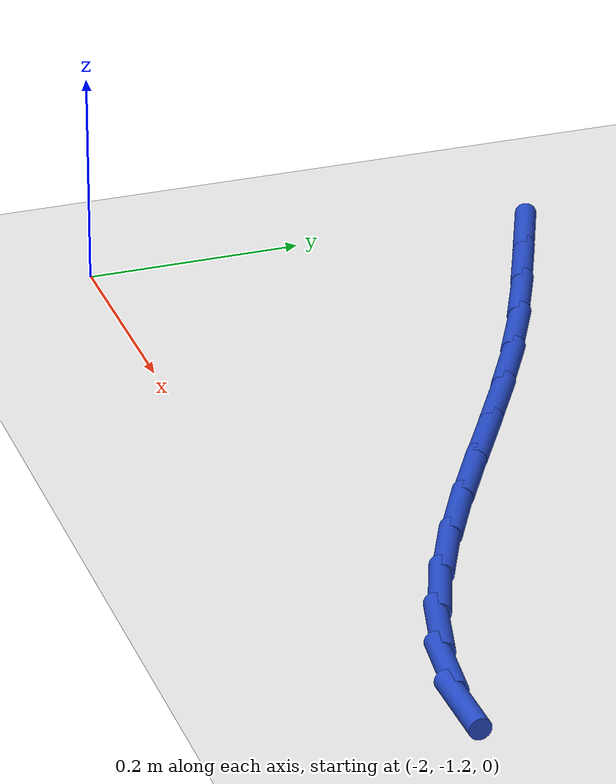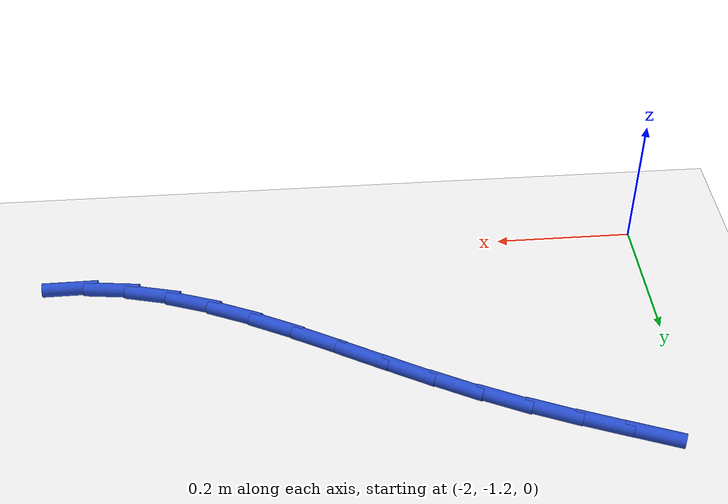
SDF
<sdf version="1.6">
 <world name="default">
  <model name="ground_plane">
   <static>1</static>
   <link name="link">
    <collision name="collision">
     <geometry><plane><normal>0 0 1</normal><size>100 100</size></plane></geometry>
     <surface><friction><ode><mu>100</mu><mu2>50</mu2></ode></friction></surface>
    </collision>
    <visual name="visual">
     <cast_shadows>0</cast_shadows>
     <geometry><plane><normal>0 0 1</normal><size>100 100</size></plane></geometry>
     <material>
      <script><uri>file://media/materials/scripts/gazebo.material</uri><name>Gazebo/WhiteGlow</name></script>
     </material>
    </visual>
   </link>
  </model>
  <model name="line">
   <link name="link_70">
    <pose>-1.941157476317382 -0.7943814646543852 0.01 0 1.57 -0.3812012821206444</pose>
    <collision name="collision">
     <geometry><cylinder><radius>0.01</radius><length>0.08</length></cylinder></geometry>
    </collision>
    <visual name="visual">
     <material>
      <script><name>Gazebo/Blue</name><uri>file://media/materials/scripts/gazebo.material</uri></script>
     </material>
     <geometry><cylinder><radius>0.01</radius><length>0.08</length></cylinder></geometry>
    </visual>
   </link>
   <link name="link_71">
    <pose>-1.8797072337007383 -0.8190111098959046 0.01 0 1.57 -0.3871343401791467</pose>
    <collision name="collision">
     <geometry><cylinder><radius>0.01</radius><length>0.08</length></cylinder></geometry>
    </collision>
    <visual name="visual">
     <material>
      <script><name>Gazebo/Blue</name><uri>file://media/materials/scripts/gazebo.material</uri></script>
     </material>
     <geometry><cylinder><radius>0.01</radius><length>0.08</length></cylinder></geometry>
    </visual>
   </link>
   <link name="link_72">
    <pose>-1.817806772867539 -0.844248484138812 0.01 0 1.57 -0.4122689746380021</pose>
    <collision name="collision">
     <geometry><cylinder><radius>0.01</radius><length>0.08</length></cylinder></geometry>
    </collision>
    <visual name="visual">
     <material>
      <script><name>Gazebo/Blue</name><uri>file://media/materials/scripts/gazebo.material</uri></script>
     </material>
     <geometry><cylinder><radius>0.01</radius><length>0.08</length></cylinder></geometry>
    </visual>
   </link>
   <link name="link_73">
    <pose>-1.7561014099807717 -0.871234180938431 0.01 0 1.57 -0.4551848548443463</pose>
    <collision name="collision">
     <geometry><cylinder><radius>0.01</radius><length>0.08</length></cylinder></geometry>
    </collision>
    <visual name="visual">
     <material>
      <script><name>Gazebo/Blue</name><uri>file://media/materials/scripts/gazebo.material</uri></script>
     </material>
     <geometry><cylinder><radius>0.01</radius><length>0.08</length></cylinder></geometry>
    </visual>
   </link>
   <link name="link_74">
    <pose>-1.6952113044715016 -0.9010378099941341 0.01 0 1.57 -0.49633005590154317</pose>
    <collision name="collision">
     <geometry><cylinder><radius>0.01</radius><length>0.08</length></cylinder></geometry>
    </collision>
    <visual name="visual">
     <material>
      <script><name>Gazebo/Blue</name><uri>file://media/materials/scripts/gazebo.material</uri></script>
     </material>
     <geometry><cylinder><radius>0.01</radius><length>0.08</length></cylinder></geometry>
    </visual>
   </link>
   <link name="link_75">
    <pose>-1.6353124938166512 -0.9334758178790203 0.01 0 1.57 -0.5196297295804968</pose>
    <collision name="collision">
     <geometry><cylinder><radius>0.01</radius><length>0.08</length></cylinder></geometry>
    </collision>
    <visual name="visual">
     <material>
      <script><name>Gazebo/Blue</name><uri>file://media/materials/scripts/gazebo.material</uri></script>
     </material>
     <geometry><cylinder><radius>0.01</radius><length>0.08</length></cylinder></geometry>
    </visual>
   </link>
   <link name="link_76">
    <pose>-1.576200814864333 -0.9672918525707527 0.01 0 1.57 -0.524935494812704</pose>
    <collision name="collision">
     <geometry><cylinder><radius>0.01</radius><length>0.08</length></cylinder></geometry>
    </collision>
    <visual name="visual">
     <material>
      <script><name>Gazebo/Blue</name><uri>file://media/materials/scripts/gazebo.material</uri></script>
     </material>
     <geometry><cylinder><radius>0.01</radius><length>0.08</length></cylinder></geometry>
    </visual>
   </link>
   <link name="link_77">
    <pose>-1.5176598288536645 -1.0011949243975804 0.01 0 1.57 -0.5119857339077166</pose>
    <collision name="collision">
     <geometry><cylinder><radius>0.01</radius><length>0.08</length></cylinder></geometry>
    </collision>
    <visual name="visual">
     <material>
      <script><name>Gazebo/Blue</name><uri>file://media/materials/scripts/gazebo.material</uri></script>
     </material>
     <geometry><cylinder><radius>0.01</radius><length>0.08</length></cylinder></geometry>
    </visual>
   </link>
   <link name="link_78">
    <pose>-1.459473097023764 -1.0338940436877546 0.01 0 1.57 -0.47977338358878696</pose>
    <collision name="collision">
     <geometry><cylinder><radius>0.01</radius><length>0.08</length></cylinder></geometry>
    </collision>
    <visual name="visual">
     <material>
      <script><name>Gazebo/Blue</name><uri>file://media/materials/scripts/gazebo.material</uri></script>
     </material>
     <geometry><cylinder><radius>0.01</radius><length>0.08</length></cylinder></geometry>
    </visual>
   </link>
   <link name="link_79">
    <pose>-1.4014241806137515 -1.0640982207695266 0.01 0 1.57 -0.4265795322491794</pose>
    <collision name="collision">
     <geometry><cylinder><radius>0.01</radius><length>0.08</length></cylinder></geometry>
    </collision>
    <visual name="visual">
     <material>
      <script><name>Gazebo/Blue</name><uri>file://media/materials/scripts/gazebo.material</uri></script>
     </material>
     <geometry><cylinder><radius>0.01</radius><length>0.08</length></cylinder></geometry>
    </visual>
   </link>
   <link name="link_80">
    <pose>-1.3432966408627423 -1.0905164659711457 0.01 0 1.57 -0.35023272286641405</pose>
    <collision name="collision">
     <geometry><cylinder><radius>0.01</radius><length>0.08</length></cylinder></geometry>
    </collision>
    <visual name="visual">
     <material>
      <script><name>Gazebo/Blue</name><uri>file://media/materials/scripts/gazebo.material</uri></script>
     </material>
     <geometry><cylinder><radius>0.01</radius><length>0.08</length></cylinder></geometry>
    </visual>
   </link>
   <link name="link_81">
    <pose>-1.284874039009858 -1.1118577896208635 0.01 0 1.57 -0.24880596550698295</pose>
    <collision name="collision">
     <geometry><cylinder><radius>0.01</radius><length>0.08</length></cylinder></geometry>
    </collision>
    <visual name="visual">
     <material>
      <script><name>Gazebo/Blue</name><uri>file://media/materials/scripts/gazebo.material</uri></script>
     </material>
     <geometry><cylinder><radius>0.01</radius><length>0.08</length></cylinder></geometry>
    </visual>
   </link>
   <link name="link_82">
    <pose>-1.2259399362942152 -1.1268312020469298 0.01 0 1.57 -0.1221884931043424</pose>
    <collision name="collision">
     <geometry><cylinder><radius>0.01</radius><length>0.08</length></cylinder></geometry>
    </collision>
    <visual name="visual">
     <material>
      <script><name>Gazebo/Blue</name><uri>file://media/materials/scripts/gazebo.material</uri></script>
     </material>
     <geometry><cylinder><radius>0.01</radius><length>0.08</length></cylinder></geometry>
    </visual>
   </link>
   <link name="link_83">
    <pose>-1.1662802410669328 -1.134157426894658 0.01 0 1.57 0.013664580937347817</pose>
    <collision name="collision">
     <geometry><cylinder><radius>0.01</radius><length>0.08</length></cylinder></geometry>
    </collision>
    <visual name="visual">
     <material>
      <script><name>Gazebo/Blue</name><uri>file://media/materials/scripts/gazebo.material</uri></script>
     </material>
     <geometry><cylinder><radius>0.01</radius><length>0.08</length></cylinder></geometry>
    </visual>
   </link>
  </model>
 </world>
</sdf>
